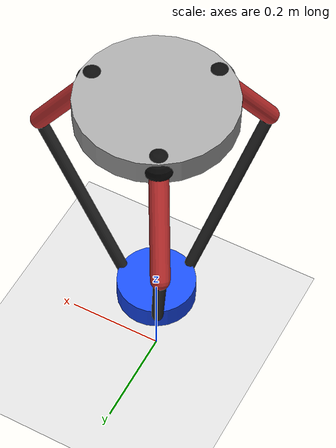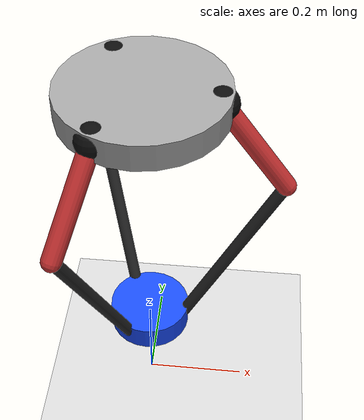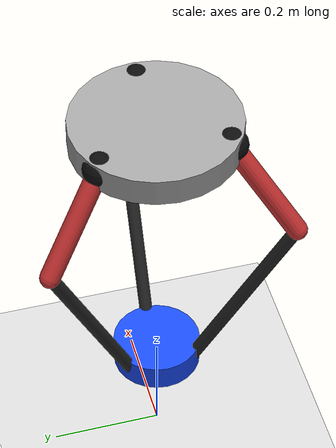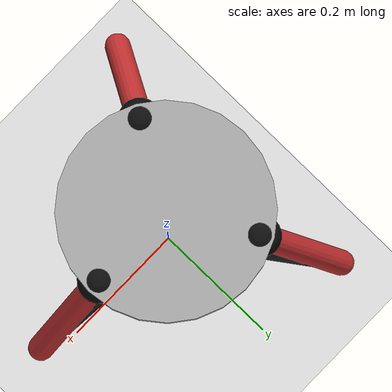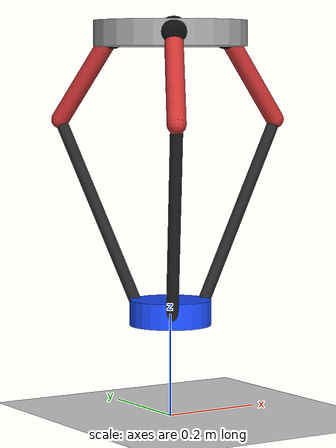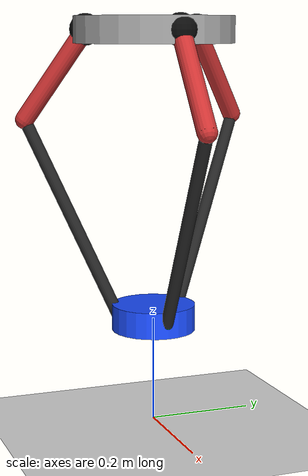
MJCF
<mujoco model="delta_closed">
  <compiler angle="radian" autolimits="true"/>

  <option
    timestep="0.001"
    gravity="0 0 -9.81"
    integrator="RK4"
    solver="Newton"/>

  <default>
    <geom contype="0" conaffinity="0" density="500"/>
    <joint damping="0.5"/>
    <site size="0.012" rgba="0 1 0 1"/>
  </default>

  <worldbody>
    <light pos="0 0 1.8" dir="0 0 -1"/>

    <geom name="floor" type="plane" size="1.2 1.2 0.02" rgba="0.85 0.85 0.85 1"/>

    <geom
      name="base_plate"
      type="cylinder"
      pos="0 0 0.75"
      size="0.15 0.025"
      rgba="0.65 0.65 0.65 1"/>

    <!-- Moving platform: translation only.
         Visual radius = 0.08 m.
         Attachment radius = 0.07 m. -->
    <body name="platform" pos="0 0 0.20477">
      <joint name="platform_x" type="slide" axis="1 0 0" limited="true" range="-0.25 0.25" damping="5"/>
      <joint name="platform_y" type="slide" axis="0 1 0" limited="true" range="-0.25 0.25" damping="5"/>
      <joint name="platform_z" type="slide" axis="0 0 1" limited="true" range="-0.15 0.25" damping="5"/>

      <geom
        name="platform_geom"
        type="cylinder"
        size="0.08 0.025"
        rgba="0.1 0.3 1 1"/>

      <site name="p1" pos="0.07 0 0"/>
      <site name="p2" pos="-0.035 0.0606 0"/>
      <site name="p3" pos="-0.035 -0.0606 0"/>
    </body>

    <body name="upper1" pos="0.13 0 0.75">
      <joint name="motor1" type="hinge" axis="0 1 0" limited="true" range="-1.2 0.8" damping="0.2"/>

      <geom
        name="motor1_hub"
        type="sphere"
        size="0.03"
        rgba="0.05 0.05 0.05 1"/>

      <geom
        name="upper1_geom"
        type="capsule"
        fromto="0 0 0 0.12 0 -0.17"
        size="0.018"
        rgba="0.8 0.2 0.2 1"/>

      <site name="elbow1" pos="0.12 0 -0.17"/>
    </body>

    <body name="fore1" pos="0.16 0 0.39238">
      <freejoint/>

      <geom
        name="fore1_geom"
        type="capsule"
        fromto="0.09 0 0.18762 -0.09 0 -0.18762"
        size="0.012"
        rgba="0.15 0.15 0.15 1"/>

      <site name="fore1_top" pos="0.09 0 0.18762"/>
      <site name="fore1_bottom" pos="-0.09 0 -0.18762"/>
    </body>

    <body name="upper2" pos="-0.065 0.1126 0.75">
      <joint name="motor2" type="hinge" axis="-0.866 -0.5 0" limited="true" range="-1.2 0.8" damping="0.2"/>

      <geom
        name="motor2_hub"
        type="sphere"
        size="0.03"
        rgba="0.05 0.05 0.05 1"/>

      <geom
        name="upper2_geom"
        type="capsule"
        fromto="0 0 0 -0.06 0.1039 -0.17"
        size="0.018"
        rgba="0.8 0.2 0.2 1"/>

      <site name="elbow2" pos="-0.06 0.1039 -0.17"/>
    </body>

    <body name="fore2" pos="-0.08 0.13855 0.39238">
      <freejoint/>

      <geom
        name="fore2_geom"
        type="capsule"
        fromto="-0.045 0.07795 0.18762 0.045 -0.07795 -0.18762"
        size="0.012"
        rgba="0.15 0.15 0.15 1"/>

      <site name="fore2_top" pos="-0.045 0.07795 0.18762"/>
      <site name="fore2_bottom" pos="0.045 -0.07795 -0.18762"/>
    </body>

    <body name="upper3" pos="-0.065 -0.1126 0.75">
      <joint name="motor3" type="hinge" axis="0.866 -0.5 0" limited="true" range="-1.2 0.8" damping="0.2"/>

      <geom
        name="motor3_hub"
        type="sphere"
        size="0.03"
        rgba="0.05 0.05 0.05 1"/>

      <geom
        name="upper3_geom"
        type="capsule"
        fromto="0 0 0 -0.06 -0.1039 -0.17"
        size="0.018"
        rgba="0.8 0.2 0.2 1"/>

      <site name="elbow3" pos="-0.06 -0.1039 -0.17"/>
    </body>

    <body name="fore3" pos="-0.08 -0.13855 0.39238">
      <freejoint/>

      <geom
        name="fore3_geom"
        type="capsule"
        fromto="-0.045 -0.07795 0.18762 0.045 0.07795 -0.18762"
        size="0.012"
        rgba="0.15 0.15 0.15 1"/>

      <site name="fore3_top" pos="-0.045 -0.07795 0.18762"/>
      <site name="fore3_bottom" pos="0.045 0.07795 -0.18762"/>
    </body>
  </worldbody>

  <equality>
    <connect name="c1_elbow" site1="elbow1" site2="fore1_top" solref="0.01 1" solimp="0.9 0.95 0.001 0.5 2"/>
    <connect name="c2_elbow" site1="elbow2" site2="fore2_top" solref="0.01 1" solimp="0.9 0.95 0.001 0.5 2"/>
    <connect name="c3_elbow" site1="elbow3" site2="fore3_top" solref="0.01 1" solimp="0.9 0.95 0.001 0.5 2"/>

    <connect name="c1_platform" site1="fore1_bottom" site2="p1" solref="0.01 1" solimp="0.9 0.95 0.001 0.5 2"/>
    <connect name="c2_platform" site1="fore2_bottom" site2="p2" solref="0.01 1" solimp="0.9 0.95 0.001 0.5 2"/>
    <connect name="c3_platform" site1="fore3_bottom" site2="p3" solref="0.01 1" solimp="0.9 0.95 0.001 0.5 2"/>
  </equality>

  <actuator>
    <motor name="act1" joint="motor1" gear="1" ctrlrange="-20 20"/>
    <motor name="act2" joint="motor2" gear="1" ctrlrange="-20 20"/>
    <motor name="act3" joint="motor3" gear="1" ctrlrange="-20 20"/>
  </actuator>
</mujoco>
